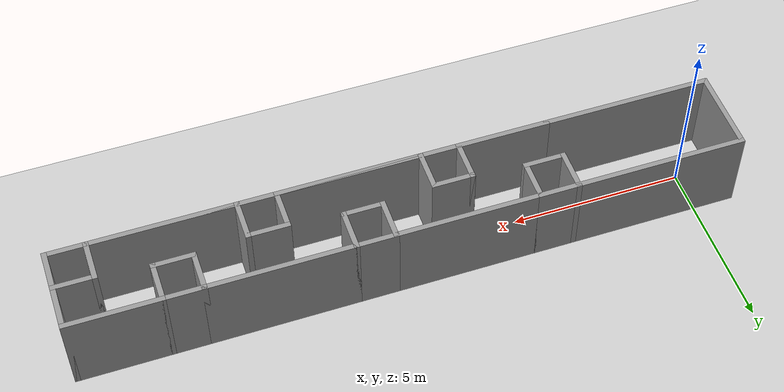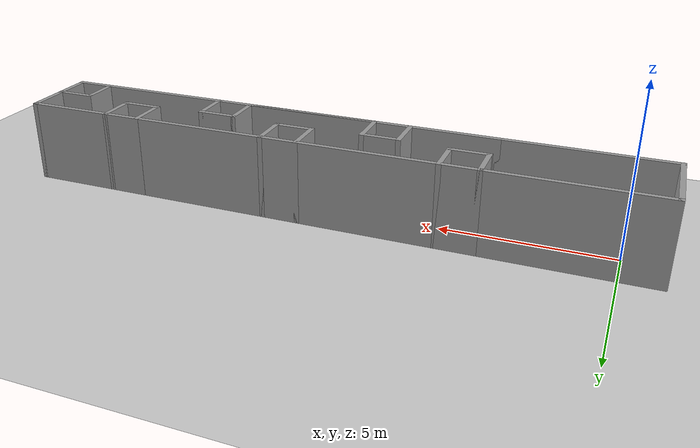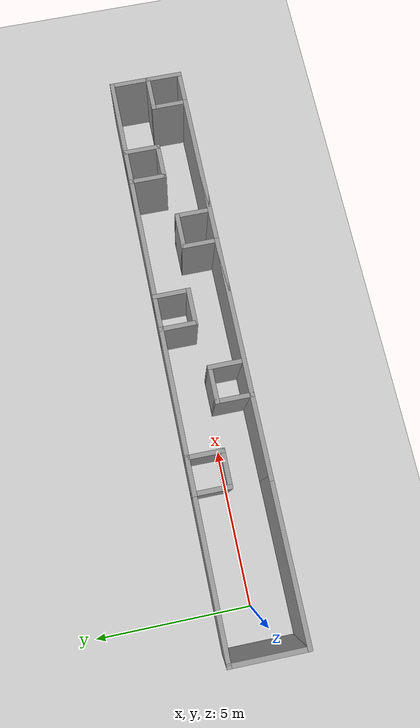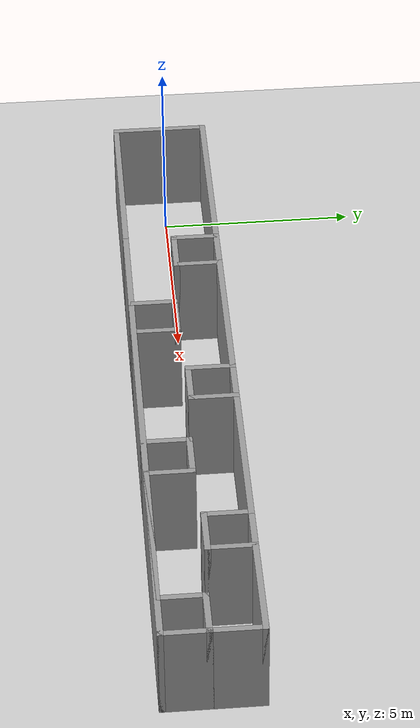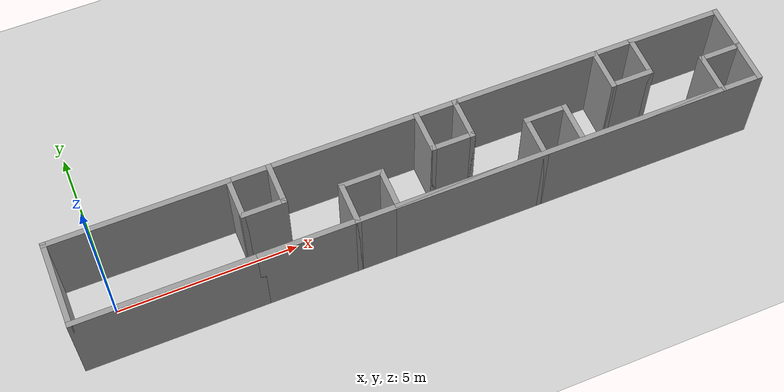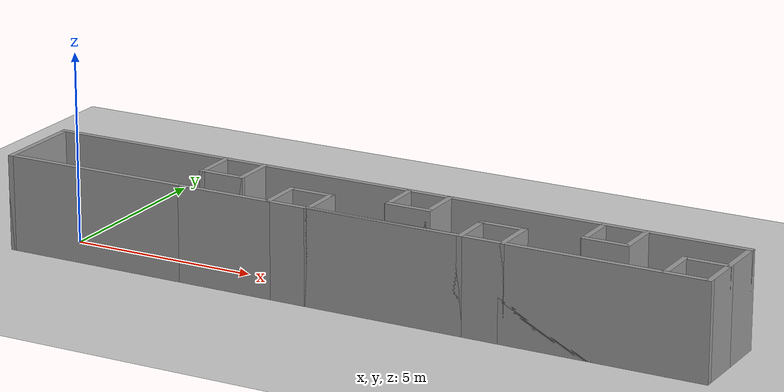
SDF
<sdf version="1.6">
 <world name="default">
  <light name="sun" type="directional">
   <pose>0 0 10 0 -0 0</pose>
   <diffuse>0.8 0.8 0.8 1</diffuse>
   <specular>0.1 0.1 0.1 1</specular>
   <attenuation>
    <range>1000</range>
    <constant>0.9</constant>
    <linear>0.01</linear>
    <quadratic>0.001</quadratic>
   </attenuation>
   <direction>-0.5 0.5 -1</direction>
  </light>
  <model name="ground_plane">
   <static>1</static>
   <link name="link">
    <collision name="collision">
     <geometry><plane><normal>0 0 1</normal><size>100 100</size></plane></geometry>
     <surface><friction><ode><mu>100</mu><mu2>50</mu2></ode></friction></surface>
    </collision>
    <visual name="visual">
     <cast_shadows>0</cast_shadows>
     <geometry><plane><normal>0 0 1</normal><size>100 100</size></plane></geometry>
     <material>
      <script><uri>file://media/materials/scripts/gazebo.material</uri><name>Gazebo/Grey</name></script>
     </material>
    </visual>
   </link>
  </model>
  <gravity>0 0 -9.8</gravity>
  <magnetic_field>6e-06 2.3e-05 -4.2e-05</magnetic_field>
  <atmosphere type="adiabatic"/>
  <physics name="default_physics" default="0" type="ode">
   <max_step_size>0.001</max_step_size>
   <real_time_factor>1</real_time_factor>
   <real_time_update_rate>1000</real_time_update_rate>
  </physics>
  <scene><ambient>0.4 0.4 0.4 1</ambient><background>0.7 0.7 0.7 1</background><shadows>1</shadows></scene>
  <spherical_coordinates>
   <surface_model>EARTH_WGS84</surface_model>
   <latitude_deg>0</latitude_deg>
   <longitude_deg>0</longitude_deg>
   <elevation>0</elevation>
   <heading_deg>0</heading_deg>
  </spherical_coordinates>
  <model name="small_s_world">
   <pose>8.33515 -0.064375 0 0 -0 0</pose>
   <link name="Wall_100">
    <collision name="Wall_100_Collision">
     <geometry><box><size>1.25 0.15 2.5</size></box></geometry>
     <pose>0 0 1.25 0 -0 0</pose>
    </collision>
    <visual name="Wall_100_Visual">
     <pose>0 0 1.25 0 -0 0</pose>
     <geometry><box><size>1.25 0.15 2.5</size></box></geometry>
     <material>
      <script><uri>file://media/materials/scripts/gazebo.material</uri><name>Gazebo/Grey</name></script>
      <ambient>1 1 1 1</ambient>
     </material>
    </visual>
    <pose>-3.525 0.625 0 0 0 -1.5708</pose>
   </link>
   <link name="Wall_101">
    <collision name="Wall_101_Collision">
     <geometry><box><size>1.25 0.15 2.5</size></box></geometry>
     <pose>0 0 1.25 0 -0 0</pose>
    </collision>
    <visual name="Wall_101_Visual">
     <pose>0 0 1.25 0 -0 0</pose>
     <geometry><box><size>1.25 0.15 2.5</size></box></geometry>
     <material>
      <script><uri>file://media/materials/scripts/gazebo.material</uri><name>Gazebo/Grey</name></script>
      <ambient>1 1 1 1</ambient>
     </material>
    </visual>
    <pose>-4.075 0.075 0 0 -0 3.14159</pose>
   </link>
   <link name="Wall_102">
    <collision name="Wall_102_Collision">
     <geometry><box><size>1.25 0.15 2.5</size></box></geometry>
     <pose>0 0 1.25 0 -0 0</pose>
    </collision>
    <visual name="Wall_102_Visual">
     <pose>0 0 1.25 0 -0 0</pose>
     <geometry><box><size>1.25 0.15 2.5</size></box></geometry>
     <material>
      <script><uri>file://media/materials/scripts/gazebo.material</uri><name>Gazebo/Grey</name></script>
      <ambient>1 1 1 1</ambient>
     </material>
    </visual>
    <pose>-4.625 0.625 0 0 -0 1.5708</pose>
   </link>
   <link name="Wall_104">
    <collision name="Wall_104_Collision">
     <geometry><box><size>4.25 0.15 2.5</size></box></geometry>
     <pose>0 0 1.25 0 -0 0</pose>
    </collision>
    <visual name="Wall_104_Visual">
     <pose>0 0 1.25 0 -0 0</pose>
     <geometry><box><size>4.25 0.15 2.5</size></box></geometry>
     <material>
      <script><uri>file://media/materials/scripts/gazebo.material</uri><name>Gazebo/Grey</name></script>
      <ambient>1 1 1 1</ambient>
     </material>
    </visual>
    <pose>-1.475 1.175 0 0 -0 0</pose>
   </link>
   <link name="Wall_105">
    <collision name="Wall_105_Collision">
     <geometry><box><size>1.25 0.15 2.5</size></box></geometry>
     <pose>0 0 1.25 0 -0 0</pose>
    </collision>
    <visual name="Wall_105_Visual">
     <pose>0 0 1.25 0 -0 0</pose>
     <geometry><box><size>1.25 0.15 2.5</size></box></geometry>
     <material>
      <script><uri>file://media/materials/scripts/gazebo.material</uri><name>Gazebo/Grey</name></script>
      <ambient>1 1 1 1</ambient>
     </material>
    </visual>
    <pose>0.575 0.625 0 0 0 -1.5708</pose>
   </link>
   <link name="Wall_106">
    <collision name="Wall_106_Collision">
     <geometry><box><size>1.25 0.15 2.5</size></box></geometry>
     <pose>0 0 1.25 0 -0 0</pose>
    </collision>
    <visual name="Wall_106_Visual">
     <pose>0 0 1.25 0 -0 0</pose>
     <geometry><box><size>1.25 0.15 2.5</size></box></geometry>
     <material>
      <script><uri>file://media/materials/scripts/gazebo.material</uri><name>Gazebo/Grey</name></script>
      <ambient>1 1 1 1</ambient>
     </material>
    </visual>
    <pose>1.125 0.075 0 0 -0 0</pose>
   </link>
   <link name="Wall_107">
    <collision name="Wall_107_Collision">
     <geometry><box><size>1.25 0.15 2.5</size></box></geometry>
     <pose>0 0 1.25 0 -0 0</pose>
    </collision>
    <visual name="Wall_107_Visual">
     <pose>0 0 1.25 0 -0 0</pose>
     <geometry><box><size>1.25 0.15 2.5</size></box></geometry>
     <material>
      <script><uri>file://media/materials/scripts/gazebo.material</uri><name>Gazebo/Grey</name></script>
      <ambient>1 1 1 1</ambient>
     </material>
    </visual>
    <pose>1.675 0.625 0 0 -0 1.5708</pose>
   </link>
   <link name="Wall_108">
    <collision name="Wall_108_Collision">
     <geometry><box><size>1.25 0.15 2.5</size></box></geometry>
     <pose>0 0 1.25 0 -0 0</pose>
    </collision>
    <visual name="Wall_108_Visual">
     <pose>0 0 1.25 0 -0 0</pose>
     <geometry><box><size>1.25 0.15 2.5</size></box></geometry>
     <material>
      <script><uri>file://media/materials/scripts/gazebo.material</uri><name>Gazebo/Grey</name></script>
      <ambient>1 1 1 1</ambient>
     </material>
    </visual>
    <pose>1.125 1.175 0 0 -0 3.14159</pose>
   </link>
   <link name="Wall_110">
    <collision name="Wall_110_Collision">
     <geometry><box><size>4.25 0.15 2.5</size></box></geometry>
     <pose>0 0 1.25 0 -0 0</pose>
    </collision>
    <visual name="Wall_110_Visual">
     <pose>0 0 1.25 0 -0 0</pose>
     <geometry><box><size>4.25 0.15 2.5</size></box></geometry>
     <material>
      <script><uri>file://media/materials/scripts/gazebo.material</uri><name>Gazebo/Grey</name></script>
      <ambient>1 1 1 1</ambient>
     </material>
    </visual>
    <pose>3.725 1.175 0 0 -0 0</pose>
   </link>
   <link name="Wall_111">
    <collision name="Wall_111_Collision">
     <geometry><box><size>1.25 0.15 2.5</size></box></geometry>
     <pose>0 0 1.25 0 -0 0</pose>
    </collision>
    <visual name="Wall_111_Visual">
     <pose>0 0 1.25 0 -0 0</pose>
     <geometry><box><size>1.25 0.15 2.5</size></box></geometry>
     <material>
      <script><uri>file://media/materials/scripts/gazebo.material</uri><name>Gazebo/Grey</name></script>
      <ambient>1 1 1 1</ambient>
     </material>
    </visual>
    <pose>5.775 0.625 0 0 0 -1.5708</pose>
   </link>
   <link name="Wall_112">
    <collision name="Wall_112_Collision">
     <geometry><box><size>1.25 0.15 2.5</size></box></geometry>
     <pose>0 0 1.25 0 -0 0</pose>
    </collision>
    <visual name="Wall_112_Visual">
     <pose>0 0 1.25 0 -0 0</pose>
     <geometry><box><size>1.25 0.15 2.5</size></box></geometry>
     <material>
      <script><uri>file://media/materials/scripts/gazebo.material</uri><name>Gazebo/Grey</name></script>
      <ambient>1 1 1 1</ambient>
     </material>
    </visual>
    <pose>6.325 0.075 0 0 -0 0</pose>
   </link>
   <link name="Wall_113">
    <collision name="Wall_113_Collision">
     <geometry><box><size>1.25 0.15 2.5</size></box></geometry>
     <pose>0 0 1.25 0 -0 0</pose>
    </collision>
    <visual name="Wall_113_Visual">
     <pose>0 0 1.25 0 -0 0</pose>
     <geometry><box><size>1.25 0.15 2.5</size></box></geometry>
     <material>
      <script><uri>file://media/materials/scripts/gazebo.material</uri><name>Gazebo/Grey</name></script>
      <ambient>1 1 1 1</ambient>
     </material>
    </visual>
    <pose>6.875 0.625 0 0 -0 1.5708</pose>
   </link>
   <link name="Wall_114">
    <collision name="Wall_114_Collision">
     <geometry><box><size>1.25 0.15 2.5</size></box></geometry>
     <pose>0 0 1.25 0 -0 0</pose>
    </collision>
    <visual name="Wall_114_Visual">
     <pose>0 0 1.25 0 -0 0</pose>
     <geometry><box><size>1.25 0.15 2.5</size></box></geometry>
     <material>
      <script><uri>file://media/materials/scripts/gazebo.material</uri><name>Gazebo/Grey</name></script>
      <ambient>1 1 1 1</ambient>
     </material>
    </visual>
    <pose>6.325 1.175 0 0 -0 3.14159</pose>
   </link>
   <link name="Wall_116">
    <collision name="Wall_116_Collision">
     <geometry><box><size>2.75 0.15 2.5</size></box></geometry>
     <pose>0 0 1.25 0 -0 0</pose>
    </collision>
    <visual name="Wall_116_Visual">
     <pose>0 0 1.25 0 -0 0</pose>
     <geometry><box><size>2.75 0.15 2.5</size></box></geometry>
     <material>
      <script><uri>file://media/materials/scripts/gazebo.material</uri><name>Gazebo/Grey</name></script>
      <ambient>1 1 1 1</ambient>
     </material>
    </visual>
    <pose>-3.325 -1.175 0 0 -0 0</pose>
   </link>
   <link name="Wall_117">
    <collision name="Wall_117_Collision">
     <geometry><box><size>1.25 0.15 2.5</size></box></geometry>
     <pose>0 0 1.25 0 -0 0</pose>
    </collision>
    <visual name="Wall_117_Visual">
     <pose>0 0 1.25 0 -0 0</pose>
     <geometry><box><size>1.25 0.15 2.5</size></box></geometry>
     <material>
      <script><uri>file://media/materials/scripts/gazebo.material</uri><name>Gazebo/Grey</name></script>
      <ambient>1 1 1 1</ambient>
     </material>
    </visual>
    <pose>-2.025 -0.625 0 0 -0 1.5708</pose>
   </link>
   <link name="Wall_118">
    <collision name="Wall_118_Collision">
     <geometry><box><size>1.25 0.15 2.5</size></box></geometry>
     <pose>0 0 1.25 0 -0 0</pose>
    </collision>
    <visual name="Wall_118_Visual">
     <pose>0 0 1.25 0 -0 0</pose>
     <geometry><box><size>1.25 0.15 2.5</size></box></geometry>
     <material>
      <script><uri>file://media/materials/scripts/gazebo.material</uri><name>Gazebo/Grey</name></script>
      <ambient>1 1 1 1</ambient>
     </material>
    </visual>
    <pose>-1.475 -0.075 0 0 -0 0</pose>
   </link>
   <link name="Wall_119">
    <collision name="Wall_119_Collision">
     <geometry><box><size>1.25 0.15 2.5</size></box></geometry>
     <pose>0 0 1.25 0 -0 0</pose>
    </collision>
    <visual name="Wall_119_Visual">
     <pose>0 0 1.25 0 -0 0</pose>
     <geometry><box><size>1.25 0.15 2.5</size></box></geometry>
     <material>
      <script><uri>file://media/materials/scripts/gazebo.material</uri><name>Gazebo/Grey</name></script>
      <ambient>1 1 1 1</ambient>
     </material>
    </visual>
    <pose>-0.925 -0.625 0 0 0 -1.5708</pose>
   </link>
   <link name="Wall_120">
    <collision name="Wall_120_Collision">
     <geometry><box><size>4.25 0.15 2.5</size></box></geometry>
     <pose>0 0 1.25 0 -0 0</pose>
    </collision>
    <visual name="Wall_120_Visual">
     <pose>0 0 1.25 0 -0 0</pose>
     <geometry><box><size>4.25 0.15 2.5</size></box></geometry>
     <material>
      <script><uri>file://media/materials/scripts/gazebo.material</uri><name>Gazebo/Grey</name></script>
      <ambient>1 1 1 1</ambient>
     </material>
    </visual>
    <pose>1.125 -1.175 0 0 -0 0</pose>
   </link>
   <link name="Wall_121">
    <collision name="Wall_121_Collision">
     <geometry><box><size>1.25 0.15 2.5</size></box></geometry>
     <pose>0 0 1.25 0 -0 0</pose>
    </collision>
    <visual name="Wall_121_Visual">
     <pose>0 0 1.25 0 -0 0</pose>
     <geometry><box><size>1.25 0.15 2.5</size></box></geometry>
     <material>
      <script><uri>file://media/materials/scripts/gazebo.material</uri><name>Gazebo/Grey</name></script>
      <ambient>1 1 1 1</ambient>
     </material>
    </visual>
    <pose>3.175 -0.625 0 0 -0 1.5708</pose>
   </link>
   <link name="Wall_122">
    <collision name="Wall_122_Collision">
     <geometry><box><size>1.25 0.15 2.5</size></box></geometry>
     <pose>0 0 1.25 0 -0 0</pose>
    </collision>
    <visual name="Wall_122_Visual">
     <pose>0 0 1.25 0 -0 0</pose>
     <geometry><box><size>1.25 0.15 2.5</size></box></geometry>
     <material>
      <script><uri>file://media/materials/scripts/gazebo.material</uri><name>Gazebo/Grey</name></script>
      <ambient>1 1 1 1</ambient>
     </material>
    </visual>
    <pose>3.725 -0.075 0 0 -0 0</pose>
   </link>
   <link name="Wall_123">
    <collision name="Wall_123_Collision">
     <geometry><box><size>1.25 0.15 2.5</size></box></geometry>
     <pose>0 0 1.25 0 -0 0</pose>
    </collision>
    <visual name="Wall_123_Visual">
     <pose>0 0 1.25 0 -0 0</pose>
     <geometry><box><size>1.25 0.15 2.5</size></box></geometry>
     <material>
      <script><uri>file://media/materials/scripts/gazebo.material</uri><name>Gazebo/Grey</name></script>
      <ambient>1 1 1 1</ambient>
     </material>
    </visual>
    <pose>4.275 -0.625 0 0 0 -1.5708</pose>
   </link>
   <link name="Wall_124">
    <collision name="Wall_124_Collision">
     <geometry><box><size>4.25 0.15 2.5</size></box></geometry>
     <pose>0 0 1.25 0 -0 0</pose>
    </collision>
    <visual name="Wall_124_Visual">
     <pose>0 0 1.25 0 -0 0</pose>
     <geometry><box><size>4.25 0.15 2.5</size></box></geometry>
     <material>
      <script><uri>file://media/materials/scripts/gazebo.material</uri><name>Gazebo/Grey</name></script>
      <ambient>1 1 1 1</ambient>
     </material>
    </visual>
    <pose>6.325 -1.175 0 0 -0 0</pose>
   </link>
   <link name="Wall_125">
    <collision name="Wall_125_Collision">
     <geometry><box><size>1.25 0.15 2.5</size></box></geometry>
     <pose>0 0 1.25 0 -0 0</pose>
    </collision>
    <visual name="Wall_125_Visual">
     <pose>0 0 1.25 0 -0 0</pose>
     <geometry><box><size>1.25 0.15 2.5</size></box></geometry>
     <material>
      <script><uri>file://media/materials/scripts/gazebo.material</uri><name>Gazebo/Grey</name></script>
      <ambient>1 1 1 1</ambient>
     </material>
    </visual>
    <pose>8.375 -0.625 0 0 -0 1.5708</pose>
   </link>
   <link name="Wall_126">
    <collision name="Wall_126_Collision">
     <geometry><box><size>1.25 0.15 2.5</size></box></geometry>
     <pose>0 0 1.25 0 -0 0</pose>
    </collision>
    <visual name="Wall_126_Visual">
     <pose>0 0 1.25 0 -0 0</pose>
     <geometry><box><size>1.25 0.15 2.5</size></box></geometry>
     <material>
      <script><uri>file://media/materials/scripts/gazebo.material</uri><name>Gazebo/Grey</name></script>
      <ambient>1 1 1 1</ambient>
     </material>
    </visual>
    <pose>8.925 -0.075 0 0 -0 0</pose>
   </link>
   <link name="Wall_127">
    <collision name="Wall_127_Collision">
     <geometry><box><size>1.25 0.15 2.5</size></box></geometry>
     <pose>0 0 1.25 0 -0 0</pose>
    </collision>
    <visual name="Wall_127_Visual">
     <pose>0 0 1.25 0 -0 0</pose>
     <geometry><box><size>1.25 0.15 2.5</size></box></geometry>
     <material>
      <script><uri>file://media/materials/scripts/gazebo.material</uri><name>Gazebo/Grey</name></script>
      <ambient>1 1 1 1</ambient>
     </material>
    </visual>
    <pose>9.475 -0.625 0 0 0 -1.5708</pose>
   </link>
   <link name="Wall_128">
    <collision name="Wall_128_Collision">
     <geometry><box><size>11.65 0.15 2.5</size></box></geometry>
     <pose>0 0 1.25 0 -0 0</pose>
    </collision>
    <visual name="Wall_128_Visual">
     <pose>0 0 1.25 0 -0 0</pose>
     <geometry><box><size>11.65 0.15 2.5</size></box></geometry>
     <material>
      <script><uri>file://media/materials/scripts/gazebo.material</uri><name>Gazebo/Grey</name></script>
      <ambient>1 1 1 1</ambient>
     </material>
    </visual>
    <pose>3.725 -1.175 0 0 -0 3.14159</pose>
   </link>
   <link name="Wall_130">
    <collision name="Wall_130_Collision">
     <geometry><box><size>2.75 0.15 2.5</size></box></geometry>
     <pose>0 0 1.25 0 -0 0</pose>
    </collision>
    <visual name="Wall_130_Visual">
     <pose>0 0 1.25 0 -0 0</pose>
     <geometry><box><size>2.75 0.15 2.5</size></box></geometry>
     <material>
      <script><uri>file://media/materials/scripts/gazebo.material</uri><name>Gazebo/Grey</name></script>
      <ambient>1 1 1 1</ambient>
     </material>
    </visual>
    <pose>8.175 1.175 0 0 -0 0</pose>
   </link>
   <link name="Wall_131">
    <collision name="Wall_131_Collision">
     <geometry><box><size>1.4 0.15 2.5</size></box></geometry>
     <pose>0 0 1.25 0 -0 0</pose>
    </collision>
    <visual name="Wall_131_Visual">
     <pose>0 0 1.25 0 -0 0</pose>
     <geometry><box><size>1.4 0.15 2.5</size></box></geometry>
     <material>
      <script><uri>file://media/materials/scripts/gazebo.material</uri><name>Gazebo/Grey</name></script>
      <ambient>1 1 1 1</ambient>
     </material>
    </visual>
    <pose>9.475 0.55 0 0 0 -1.5708</pose>
   </link>
   <link name="Wall_94">
    <collision name="Wall_94_Collision">
     <geometry><box><size>2.5 0.15 2.5</size></box></geometry>
     <pose>0 0 1.25 0 -0 0</pose>
    </collision>
    <visual name="Wall_94_Visual">
     <pose>0 0 1.25 0 -0 0</pose>
     <geometry><box><size>2.5 0.15 2.5</size></box></geometry>
     <material>
      <script><uri>file://media/materials/scripts/gazebo.material</uri><name>Gazebo/Grey</name></script>
      <ambient>1 1 1 1</ambient>
     </material>
    </visual>
    <pose>-9.475 0 0 0 0 -1.5708</pose>
   </link>
   <link name="Wall_95">
    <collision name="Wall_95_Collision">
     <geometry><box><size>5 0.15 2.5</size></box></geometry>
     <pose>0 0 1.25 0 -0 0</pose>
    </collision>
    <visual name="Wall_95_Visual">
     <pose>0 0 1.25 0 -0 0</pose>
     <geometry><box><size>5 0.15 2.5</size></box></geometry>
     <material>
      <script><uri>file://media/materials/scripts/gazebo.material</uri><name>Gazebo/Grey</name></script>
      <ambient>1 1 1 1</ambient>
     </material>
    </visual>
    <pose>-7.05 -1.175 0 0 -0 0</pose>
   </link>
   <link name="Wall_97">
    <collision name="Wall_97_Collision">
     <geometry><box><size>5 0.15 2.5</size></box></geometry>
     <pose>0 0 1.25 0 -0 0</pose>
    </collision>
    <visual name="Wall_97_Visual">
     <pose>0 0 1.25 0 -0 0</pose>
     <geometry><box><size>5 0.15 2.5</size></box></geometry>
     <material>
      <script><uri>file://media/materials/scripts/gazebo.material</uri><name>Gazebo/Grey</name></script>
      <ambient>1 1 1 1</ambient>
     </material>
    </visual>
    <pose>-7.05 1.175 0 0 -0 3.14159</pose>
   </link>
   <link name="Wall_99">
    <collision name="Wall_99_Collision">
     <geometry><box><size>1.25 0.15 2.5</size></box></geometry>
     <pose>0 0 1.25 0 -0 0</pose>
    </collision>
    <visual name="Wall_99_Visual">
     <pose>0 0 1.25 0 -0 0</pose>
     <geometry><box><size>1.25 0.15 2.5</size></box></geometry>
     <material>
      <script><uri>file://media/materials/scripts/gazebo.material</uri><name>Gazebo/Grey</name></script>
      <ambient>1 1 1 1</ambient>
     </material>
    </visual>
    <pose>-4.075 1.175 0 0 -0 0</pose>
   </link>
   <static>1</static>
  </model>
 </world>
</sdf>
